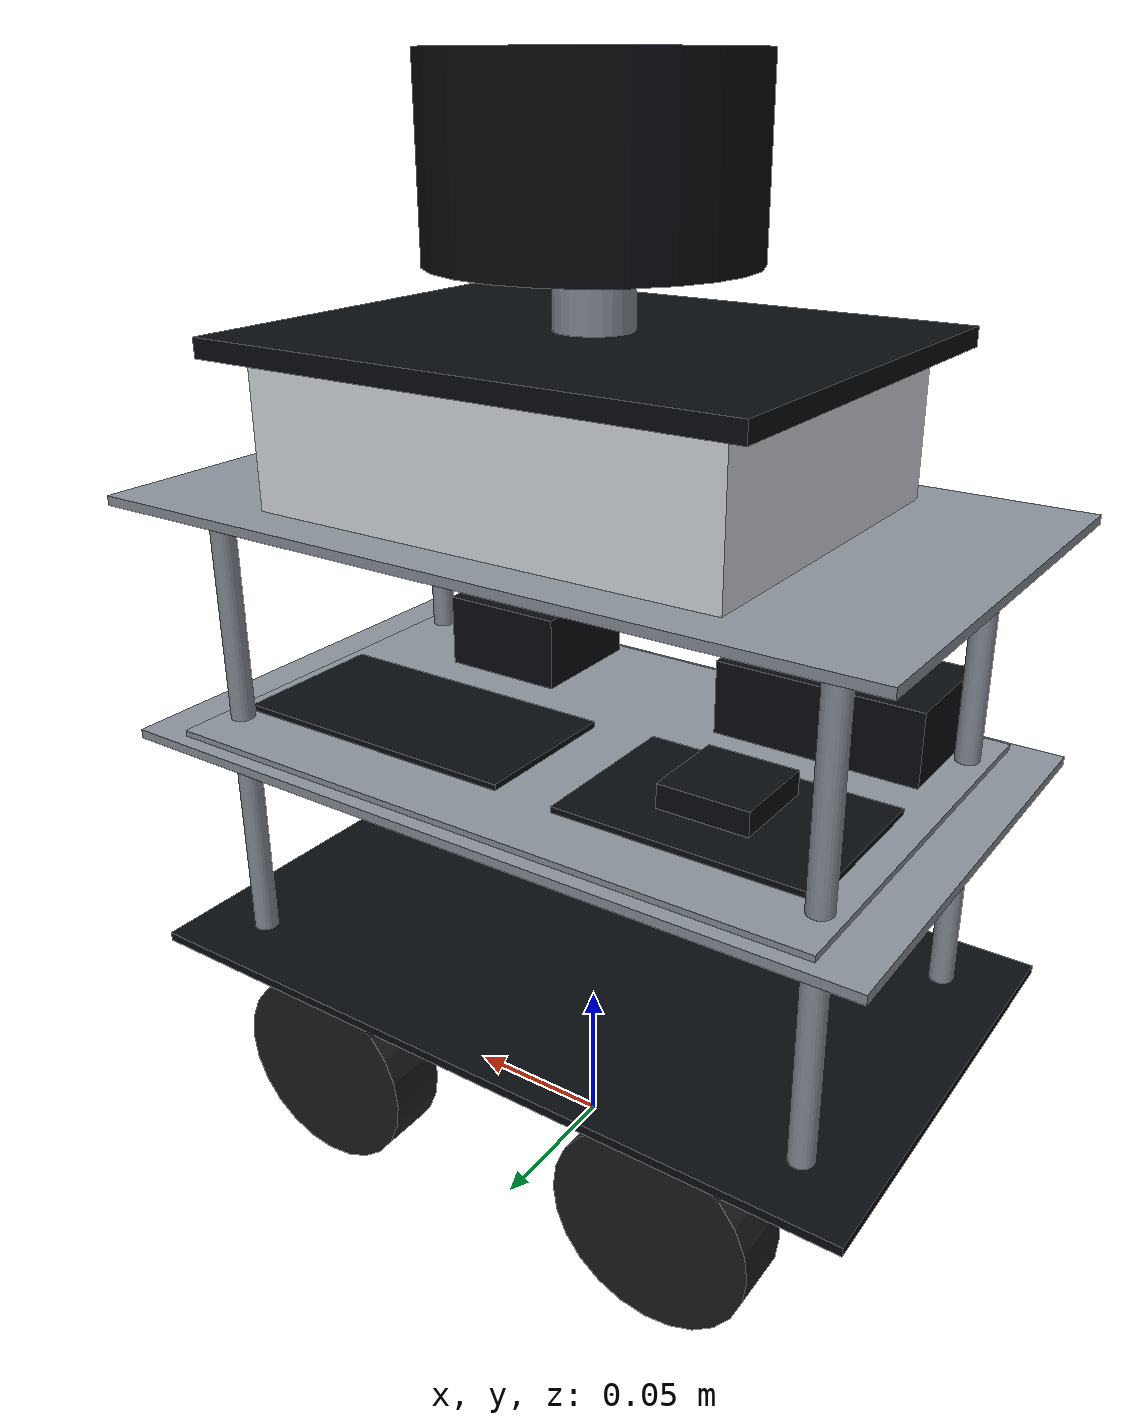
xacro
<?xml version="1.0"?>
<robot name="vayron" xmlns:xacro="http://www.ros.org/wiki/xacro">

  <xacro:arg name="simulation" default="false"/>
  <xacro:property name="simulation" value="$(arg simulation)"/>
  <!-- Reference chassis dimensions in metres -->
  <xacro:property name="chassis_length" value="0.257"/>
  <xacro:property name="chassis_width" value="0.150"/>
  <xacro:property name="chassis_thickness" value="0.003"/>

  <!-- Four-wheel differential drive geometry -->
  <xacro:property name="wheel_radius" value="0.033625"/>
  <xacro:property name="wheel_width" value="0.02019"/>
  <xacro:property name="wheel_x" value="0.065085"/>
  <xacro:property name="wheel_y" value="0.058565"/>
  <xacro:property name="wheel_z" value="-0.033875"/>

  <!-- Three-layer chassis -->
  <xacro:property name="plate_gap" value="0.0762"/>
  <xacro:property name="plate_center_spacing" value="0.0792"/>
  <xacro:property name="spacer_height" value="0.0762"/>
  <xacro:property name="spacer_radius" value="0.004"/>

  <material name="mat_white">
    <color rgba="0.88 0.90 0.92 1"/>
  </material>
  <material name="mat_black">
    <color rgba="0.035 0.045 0.060 1"/>
  </material>
  <material name="mat_rubber">
    <color rgba="0.10 0.11 0.12 1"/>
  </material>
  <material name="mat_amber">
    <color rgba="1.0 0.32 0.025 1"/>
  </material>
  <material name="mat_metal">
    <color rgba="0.55 0.58 0.62 1"/>
  </material>

  <!-- Main reference frame -->
  <link name="base_footprint"/>

  <link name="base_link">
    <visual>
      <geometry>
        <box size="${chassis_length} ${chassis_width} ${chassis_thickness}"/>
      </geometry>
      <material name="mat_black"/>
    </visual>
    <collision>
      <geometry>
        <box size="${chassis_length} ${chassis_width} ${chassis_thickness}"/>
      </geometry>
    </collision>
    <inertial>
      <mass value="1.5"/>
      <inertia ixx="0.012" ixy="0" ixz="0"
               iyy="0.012" iyz="0" izz="0.012"/>
    </inertial>
  </link>

  <joint name="base_footprint_joint" type="fixed">
    <parent link="base_footprint"/>
    <child link="base_link"/>
    <origin xyz="0 0 0.0675" rpy="0 0 0"/>
  </joint>

  <!-- Middle and upper chassis plates -->
  <xacro:macro name="chassis_plate" params="name z">
    <link name="${name}">
      <visual>
        <geometry>
          <box size="${chassis_length} ${chassis_width} ${chassis_thickness}"/>
        </geometry>
        <material name="mat_metal"/>
      </visual>
      <collision>
        <geometry>
          <box size="${chassis_length} ${chassis_width} ${chassis_thickness}"/>
        </geometry>
      </collision>
      <inertial>
        <mass value="0.35"/>
        <inertia ixx="0.00070" ixy="0" ixz="0"
                 iyy="0.00195" iyz="0" izz="0.00260"/>
      </inertial>
    </link>

    <joint name="${name}_joint" type="fixed">
      <parent link="base_link"/>
      <child link="${name}"/>
      <origin xyz="0 0 ${z}" rpy="0 0 0"/>
    </joint>
  </xacro:macro>

  <xacro:chassis_plate name="middle_plate"
                       z="${plate_center_spacing}"/>
  <xacro:chassis_plate name="upper_plate"
                       z="${2 * plate_center_spacing}"/>

  <!-- Eight provisional cylindrical spacers -->
  <xacro:macro name="spacer" params="name x y z">
    <link name="${name}">
      <visual>
        <geometry>
          <cylinder radius="${spacer_radius}" length="${spacer_height}"/>
        </geometry>
        <material name="mat_metal"/>
      </visual>
      <collision>
        <geometry>
          <cylinder radius="${spacer_radius}" length="${spacer_height}"/>
        </geometry>
      </collision>
      <inertial>
        <mass value="0.025"/>
        <inertia ixx="0.00002" ixy="0" ixz="0"
                 iyy="0.00002" iyz="0" izz="0.000001"/>
      </inertial>
    </link>

    <joint name="${name}_joint" type="fixed">
      <parent link="base_link"/>
      <child link="${name}"/>
      <origin xyz="${x} ${y} ${z}" rpy="0 0 0"/>
    </joint>
  </xacro:macro>

  <!-- Lower spacer level -->
  <xacro:spacer name="spacer_lower_fl" x="0.105" y="0.052" z="0.0396"/>
  <xacro:spacer name="spacer_lower_fr" x="0.105" y="-0.052" z="0.0396"/>
  <xacro:spacer name="spacer_lower_rl" x="-0.105" y="0.052" z="0.0396"/>
  <xacro:spacer name="spacer_lower_rr" x="-0.105" y="-0.052" z="0.0396"/>

  <!-- Upper spacer level -->
  <xacro:spacer name="spacer_upper_fl" x="0.105" y="0.052" z="0.1188"/>
  <xacro:spacer name="spacer_upper_fr" x="0.105" y="-0.052" z="0.1188"/>
  <xacro:spacer name="spacer_upper_rl" x="-0.105" y="0.052" z="0.1188"/>
  <xacro:spacer name="spacer_upper_rr" x="-0.105" y="-0.052" z="0.1188"/>

  <!-- Four conventional wheels -->
  <xacro:macro name="wheel" params="name x y side">
    <link name="${name}">
      <visual>
        <origin xyz="0 0 0" rpy="1.5707963 0 0"/>
        <geometry>
          <cylinder radius="${wheel_radius}" length="${wheel_width}"/>
        </geometry>
        <material name="mat_rubber"/>
      </visual>
      <collision>
        <origin xyz="0 0 0" rpy="1.5707963 0 0"/>
        <geometry>
          <cylinder radius="${wheel_radius}" length="${wheel_width}"/>
        </geometry>
      </collision>
      <inertial>
        <mass value="0.20"/>
        <inertia ixx="0.00015" ixy="0" ixz="0"
                 iyy="0.00015" iyz="0" izz="0.00015"/>
      </inertial>
    </link>

    <joint name="${name}_joint" type="continuous">
      <parent link="base_link"/>
      <child link="${name}"/>
      <origin xyz="${x} ${y} ${wheel_z}" rpy="0 0 0"/>
      <axis xyz="0 1 0"/>
      <limit effort="5.0" velocity="20.0"/>
      <dynamics damping="0.1" friction="0.1"/>
    </joint>
  </xacro:macro>

  <xacro:wheel name="front_left_wheel"  x="${wheel_x}"  y="${wheel_y}"  side="left"/>
  <xacro:wheel name="rear_left_wheel"   x="${-wheel_x}" y="${wheel_y}"  side="left"/>
  <xacro:wheel name="front_right_wheel" x="${wheel_x}"  y="${-wheel_y}" side="right"/>
  <xacro:wheel name="rear_right_wheel"  x="${-wheel_x}" y="${-wheel_y}" side="right"/>

  <!-- Electronics tray mounted on the middle plate -->
  <link name="electronics_tray">
    <visual>
      <geometry>
        <box size="0.225 0.140 0.002"/>
      </geometry>
      <material name="mat_metal"/>
    </visual>
  </link>

  <joint name="electronics_tray_joint" type="fixed">
    <parent link="middle_plate"/>
    <child link="electronics_tray"/>
    <origin xyz="0 0 0.0025" rpy="0 0 0"/>
  </joint>

  <!-- Raspberry Pi 4B -->
  <link name="raspberry_pi_link">
    <visual>
      <geometry><box size="0.085 0.056 0.002"/></geometry>
      <material name="mat_black"/>
    </visual>
  </link>

  <joint name="raspberry_pi_joint" type="fixed">
    <parent link="electronics_tray"/>
    <child link="raspberry_pi_link"/>
    <origin xyz="-0.060 0.020 0.002" rpy="0 0 0"/>
  </joint>

  <!-- Raspberry Pi cooling fan -->
  <link name="pi_fan_link">
    <visual>
      <geometry><box size="0.030 0.030 0.008"/></geometry>
      <material name="mat_black"/>
    </visual>
  </link>

  <joint name="pi_fan_joint" type="fixed">
    <parent link="raspberry_pi_link"/>
    <child link="pi_fan_link"/>
    <origin xyz="0 0 0.007" rpy="0 0 0"/>
  </joint>

  <!-- Arduino Uno R3 -->
  <link name="arduino_uno_link">
    <visual>
      <geometry><box size="0.102 0.053 0.002"/></geometry>
      <material name="mat_black"/>
    </visual>
  </link>

  <joint name="arduino_uno_joint" type="fixed">
    <parent link="electronics_tray"/>
    <child link="arduino_uno_link"/>
    <origin xyz="0.055 0.020 0.002" rpy="0 0 0"/>
  </joint>

  <!-- L298N motor driver visual placeholder -->
  <link name="l298n_link">
    <visual>
      <geometry><box size="0.043 0.043 0.025"/></geometry>
      <material name="mat_black"/>
    </visual>
  </link>

  <joint name="l298n_joint" type="fixed">
    <parent link="electronics_tray"/>
    <child link="l298n_link"/>
    <origin xyz="0.055 -0.045 0.0135" rpy="0 0 0"/>
  </joint>

  <!-- Battery visual placeholder -->
  <link name="battery_link">
    <visual>
      <geometry><box size="0.070 0.040 0.025"/></geometry>
      <material name="mat_black"/>
    </visual>
  </link>

  <joint name="battery_joint" type="fixed">
    <parent link="electronics_tray"/>
    <child link="battery_link"/>
    <origin xyz="-0.065 -0.045 0.0135" rpy="0 0 0"/>
  </joint>

  <!-- Upper shell mounted on the upper plate -->
  <link name="upper_shell">
    <visual>
      <origin xyz="0 0 0.0225"/>
      <geometry><box size="0.155 0.120 0.045"/></geometry>
      <material name="mat_white"/>
    </visual>

    <visual>
      <origin xyz="0 0 0.048"/>
      <geometry><box size="0.175 0.140 0.006"/></geometry>
      <material name="mat_black"/>
    </visual>

    <collision>
      <origin xyz="0 0 0.0225"/>
      <geometry><box size="0.155 0.120 0.045"/></geometry>
    </collision>

    <inertial>
      <mass value="0.45"/>
      <inertia ixx="0.0012" ixy="0" ixz="0"
               iyy="0.0012" iyz="0" izz="0.0012"/>
    </inertial>
  </link>

  <joint name="upper_shell_joint" type="fixed">
    <parent link="upper_plate"/>
    <child link="upper_shell"/>
    <origin xyz="0 0 0.0015" rpy="0 0 0"/>
  </joint>

  <!-- Amber front light strip -->
  <link name="front_amber_panel">
    <visual>
      <geometry><box size="0.003 0.085 0.004"/></geometry>
      <material name="mat_amber"/>
    </visual>
  </link>

  <joint name="front_amber_panel_joint" type="fixed">
    <parent link="upper_shell"/>
    <child link="front_amber_panel"/>
    <origin xyz="0.079 0 0.0225" rpy="0 0 0"/>
  </joint>

  <!-- LiDAR mounting post on upper plate -->
  <link name="lidar_mount">
    <visual>
      <geometry><cylinder radius="0.012" length="0.018"/></geometry>
      <material name="mat_metal"/>
    </visual>
  </link>

  <joint name="lidar_mount_joint" type="fixed">
    <parent link="upper_plate"/>
    <child link="lidar_mount"/>
    <origin xyz="0 0 0.062" rpy="0 0 0"/>
  </joint>

  <!-- RPLIDAR C1 visual representation -->
  <link name="laser">
    <visual>
      <geometry><cylinder radius="0.048" length="0.055"/></geometry>
      <material name="mat_black"/>
    </visual>
  </link>

  <joint name="rplidar_joint" type="fixed">
    <parent link="lidar_mount"/>
    <child link="laser"/>
    <origin xyz="0 0 0.0365" rpy="0 0 0"/>
  </joint>

  <!-- Gazebo Classic simulated 360-degree LiDAR -->
  <xacro:if value="$(arg simulation)">
<gazebo reference="laser">
    <sensor name="vayron_lidar" type="ray">
      <pose>0 0 0 0 0 0</pose>
      <visualize>true</visualize>
      <always_on>true</always_on>
      <update_rate>10</update_rate>

      <ray>
        <scan>
          <horizontal>
            <samples>360</samples>
            <resolution>1</resolution>
            <min_angle>-3.14159265</min_angle>
            <max_angle>3.14159265</max_angle>
          </horizontal>
          <vertical>
            <samples>1</samples>
            <resolution>1</resolution>
            <min_angle>0</min_angle>
            <max_angle>0</max_angle>
          </vertical>
        </scan>
        <range>
          <min>0.15</min>
          <max>12.0</max>
          <resolution>0.01</resolution>
        </range>
      </ray>

      <plugin name="vayron_lidar_ros" filename="libgazebo_ros_ray_sensor.so">
        <ros>
          <namespace>/</namespace>
          <remapping>~/out:=/scan</remapping>
        </ros>
        <output_type>sensor_msgs/LaserScan</output_type>
        <frame_name>laser</frame_name>
      </plugin>
    </sensor>
  </gazebo>
  </xacro:if>

  <!-- VAYRON differential drive controller for Gazebo Classic -->
  <xacro:if value="$(arg simulation)">
<gazebo>
    <plugin name="vayron_diff_drive"
            filename="libgazebo_ros_diff_drive.so">

      <ros>
        <namespace>/</namespace>
        <remapping>cmd_vel:=/cmd_vel_safe</remapping>
        <remapping>odom:=/odom</remapping>
      </ros>

      <update_rate>50</update_rate>
      <num_wheel_pairs>2</num_wheel_pairs>

      <!-- Keep each left/right pair adjacent for Gazebo Classic -->
      <left_joint>front_left_wheel_joint</left_joint>
      <right_joint>front_right_wheel_joint</right_joint>
      <left_joint>rear_left_wheel_joint</left_joint>
      <right_joint>rear_right_wheel_joint</right_joint>

      <!-- Front wheel pair -->
      <wheel_separation>0.11713</wheel_separation>
      <wheel_diameter>0.06725</wheel_diameter>

      <!-- Rear wheel pair -->
      <wheel_separation>0.11713</wheel_separation>
      <wheel_diameter>0.06725</wheel_diameter>

      <max_wheel_torque>5.0</max_wheel_torque>
      <max_wheel_acceleration>2.0</max_wheel_acceleration>

      <command_topic>cmd_vel</command_topic>
      <odometry_topic>odom</odometry_topic>
      <odometry_frame>odom</odometry_frame>
      <robot_base_frame>base_footprint</robot_base_frame>

      <publish_odom>true</publish_odom>
      <publish_odom_tf>true</publish_odom_tf>
      <publish_wheel_tf>false</publish_wheel_tf>

    </plugin>
  </gazebo>
  </xacro:if>

  <!-- Publish actual Gazebo wheel joint states -->
  <xacro:if value="$(arg simulation)">
<gazebo>
    <plugin name="gazebo_joint_state_publisher"
            filename="libgazebo_ros_joint_state_publisher.so">
      <ros>
        <namespace>/</namespace>
        <remapping>joint_states:=/joint_states</remapping>
      </ros>

      <update_rate>50</update_rate>

      <joint_name>front_left_wheel_joint</joint_name>
      <joint_name>rear_left_wheel_joint</joint_name>
      <joint_name>front_right_wheel_joint</joint_name>
      <joint_name>rear_right_wheel_joint</joint_name>
    </plugin>
  </gazebo>
  </xacro:if>

</robot>
